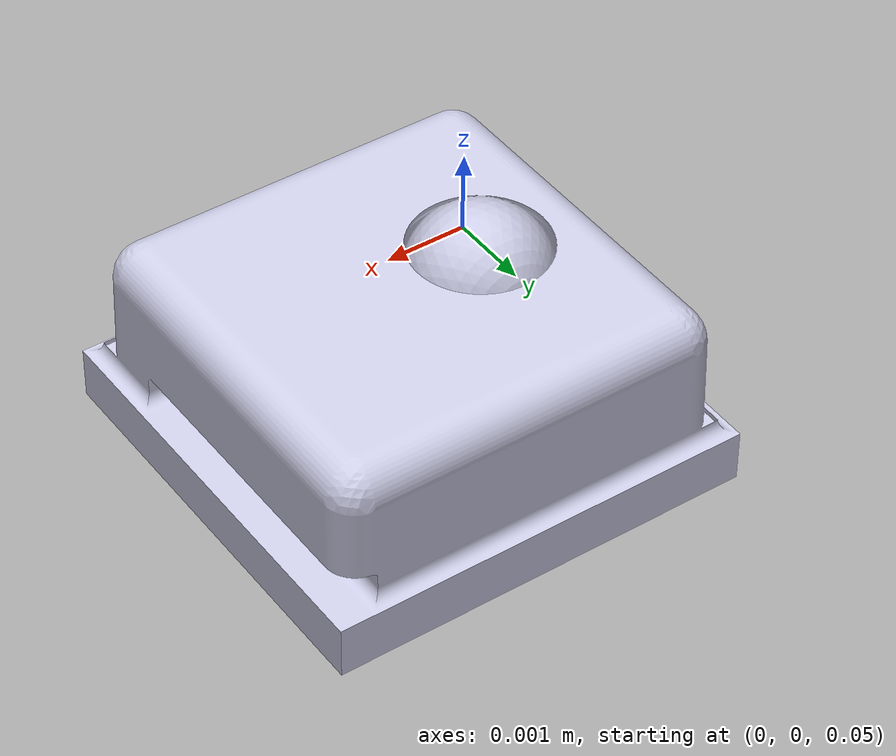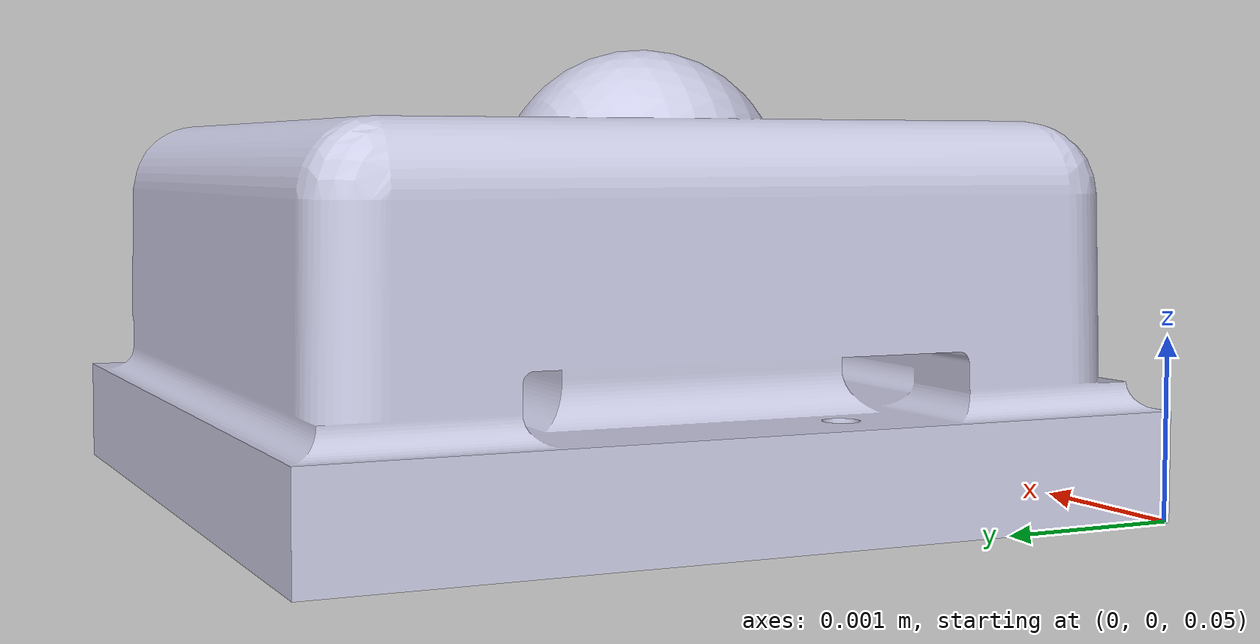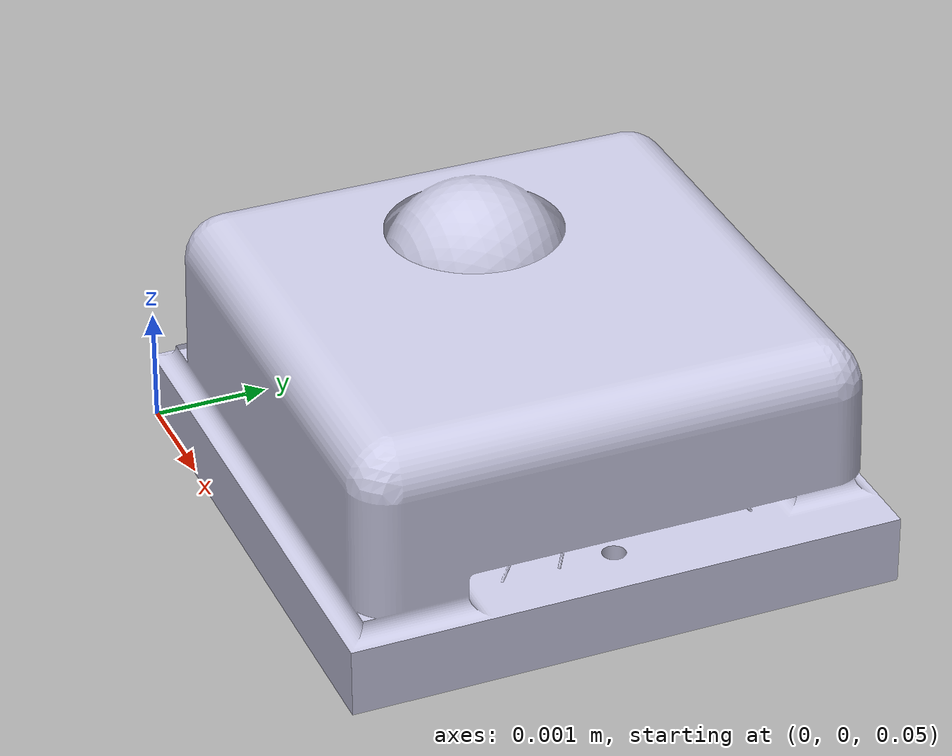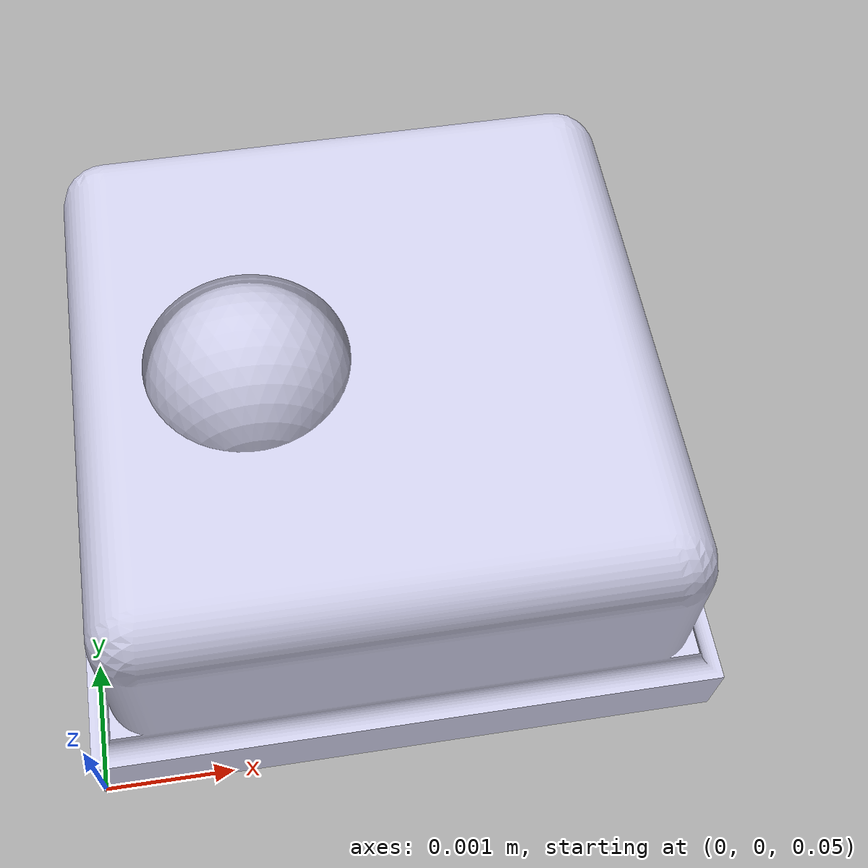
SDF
<?xml version="1.0" ?>
<sdf version="1.6">
  <model name="force_box">
    <pose>0 0 0.05 0 0 0</pose>
    <static>false</static>

    <!-- Base fija del sensor -->
    <link name="base_link">
      <inertial>
        <mass>0.001</mass>
        <inertia>
          <ixx>1e-6</ixx>
          <iyy>1e-6</iyy>
          <izz>1e-6</izz>
          <ixy>0.0</ixy>
          <ixz>0.0</ixz>
          <iyz>0.0</iyz>
        </inertia>
      </inertial>
    </link>

    <!-- Cuerpo medido del sensor -->
    <link name="sensor_link">
      <pose>0 0 0 0 0 0</pose>
      <gravity>false</gravity>

      <inertial>
        <mass>0.001</mass>
        <inertia>
          <ixx>1e-6</ixx>
          <iyy>1e-6</iyy>
          <izz>1e-6</izz>
          <ixy>0.0</ixy>
          <ixz>0.0</ixz>
          <iyz>0.0</iyz>
        </inertia>
      </inertial>

      <visual name="visual">
        <geometry>
          <mesh>
            <uri>model://force_box/meshes/FMAMSDXX015WC2C3.dae</uri>
            <scale>1 1 1</scale>
          </mesh>
        </geometry>
      </visual>

      <collision name="collision">
        <geometry>
          <box><size>0.00483 0.00483 0.00253</size></box>
        </geometry>
      </collision>
    </link>

    <!-- Unión fija entre base y sensor -->
    <joint name="force_joint" type="revolute">
      <parent>base_link</parent>
      <child>sensor_link</child>
    </joint>

    <!-- Sensor de fuerza (activar para pruebas reales con plugin) -->
  </model>
</sdf>
